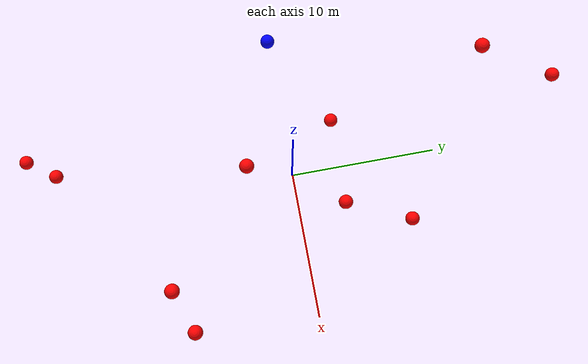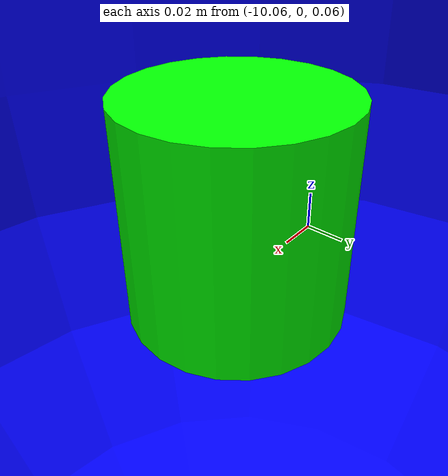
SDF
<?xml version="1.0" ?>
<sdf version="1.8">
    <world name="3d_world">
        <physics name="1ms" type="ode">
            <max_step_size>0.001</max_step_size>
            <real_time_factor>1.0</real_time_factor>
            <real_time_update_rate>1000.0</real_time_update_rate>
        </physics>
        <gravity>0 0 0</gravity>

        <plugin
            filename="gz-sim-physics-system"
            name="gz::sim::v8::systems::Physics">
        </plugin>
        <plugin
            filename="libignition-gazebo-user-commands-system.so"
            name="ignition::gazebo::systems::UserCommands">
        </plugin>
        <plugin
            filename="gz-sim-scene-broadcaster-system"
            name="gz::sim::systems::SceneBroadcaster">
        </plugin>
        <plugin
            filename="gz-sim-sensors-system"
            name="gz::sim::systems::Sensors">
            <render_engine>ogre2</render_engine>
        </plugin>

        <light type="directional" name="sun">
            <cast_shadows>true</cast_shadows>
            <pose>0 0 10 0 0 0</pose>
            <diffuse>0.8 0.8 0.8 1</diffuse>
            <specular>0.2 0.2 0.2 1</specular>
            <attenuation>
                <range>1000</range>
                <constant>0.9</constant>
                <linear>0.01</linear>
                <quadratic>0.001</quadratic>
            </attenuation>
            <direction>-0.5 0.1 -0.9</direction>
        </light>

        <!-- AGENTE -->
        <model name='agente' canonical_link='chassis'>
            <pose relative_to='world'>-10.0 0 0.0 0 0 0</pose>
            <link name='chassis'>
                <pose relative_to='__model__'>0.0 0 0.0 0 0 0</pose>
                <inertial>
                    <mass>1.14395</mass>
                    <inertia>
                        <ixx>0.095329</ixx>
                        <ixy>0</ixy>
                        <ixz>0</ixz>
                        <iyy>0.381317</iyy>
                        <iyz>0</iyz>
                        <izz>0.476646</izz>
                    </inertia>
                </inertial>
                <visual name='visual'>
                    <geometry>
                        <sphere>
                            <radius>0.5</radius>
                        </sphere>
                    </geometry>
                    <material>
                        <ambient>0.0 0.0 1.0 1</ambient>
                        <diffuse>0.0 0.0 1.0 1</diffuse>
                        <specular>0.0 0.0 1.0 1</specular>
                    </material>
                </visual>
                <collision name='collision'>
                    <geometry>
                        <sphere>
                            <radius>0.5</radius>
                        </sphere>
                    </geometry>
                </collision>
                <enable_gravity>false</enable_gravity>
            </link>

            <link name='lidar_link'>
                <pose relative_to='chassis'>0.0 0 0.1 0 0 0</pose>
                <inertial>
                    <mass>0.1</mass>
                    <inertia>
                        <ixx>0.000166667</ixx>
                        <iyy>0.000166667</iyy>
                        <izz>0.000166667</izz>
                    </inertia>
                </inertial>
                <collision name='collision'>
                    <geometry>
                        <cylinder>
                            <radius>0.05</radius>
                            <length>0.1</length>
                        </cylinder>
                    </geometry>
                </collision>
                <visual name='visual'>
                    <geometry>
                        <cylinder>
                            <radius>0.05</radius>
                            <length>0.1</length>
                        </cylinder>
                    </geometry>
                    <material>
                        <ambient>0.0 1.0 0.0 1</ambient>
                        <diffuse>0.0 1.0 0.0 1</diffuse>
                        <specular>0.0 1.0 0.0 1</specular>
                    </material>
                </visual>
                <sensor name="lidar" type="gpu_lidar">
                    <topic>scan</topic>
                    <update_rate>10</update_rate>
                    <lidar>
                        <scan>
                            <horizontal>
                                <samples>5000</samples>
                                <resolution>1</resolution>
                                <min_angle>-3.14159</min_angle>
                                <max_angle>3.14159</max_angle>
                            </horizontal>
                        </scan>
                        <range>
                            <min>0.1</min>
                            <max>10.0</max>
                            <resolution>0.01</resolution>
                        </range>
                    </lidar>
                    <visualize>true</visualize>
                    <always_on>true</always_on>
                    <update_rate>10</update_rate>
                    <pose_frame>lidar</pose_frame>
                </sensor>
                <enable_gravity>false</enable_gravity>
            </link>

            <joint name="lidar_joint" type="fixed">
                <parent>chassis</parent>
                <child>lidar_link</child>
            </joint>

            <plugin
                filename="ignition-gazebo-joint-state-publisher-system"
                name="ignition::gazebo::systems::JointStatePublisher">
            </plugin>
            <plugin
                filename="ignition-gazebo-odometry-publisher-system"
                name="ignition::gazebo::systems::OdometryPublisher">
                <dimensions>3</dimensions>
            </plugin>
            <plugin
                filename="ignition-gazebo-velocity-control-system"
                name="ignition::gazebo::systems::VelocityControl">
                <initial_linear>0.0 0 0</initial_linear>
                <initial_angular>0 0 0.0</initial_angular>
            </plugin>
            <plugin
                filename="libignition-gazebo-pose-publisher-system.so"
                name="ignition::gazebo::systems::PosePublisher">
                <topic>/agente/pose</topic>
                <frame_id>agente</frame_id>
                <update_rate>30</update_rate>
            </plugin>
        </model>

        <!-- OBSTACLE 1 -->
        <model name='obstacle_1' canonical_link='obstacle'>
            <static>false</static>
            <pose relative_to='world'>2.51 3.31 -0.12 0 0 0</pose>
            <link name='obstacle'>
                <pose relative_to='__model__'>0.0 0 0.0 0 0 0</pose>
                <visual name='visual'>
                    <geometry>
                        <sphere>
                            <radius>0.50</radius>
                        </sphere>
                    </geometry>
                    <material>
                        <ambient>1.0 0.0 0.0 1</ambient>
                        <diffuse>1.0 0.0 0.0 1</diffuse>
                        <specular>1.0 0.0 0.0 1</specular>
                    </material>
                </visual>
                <collision name='collision'>
                    <geometry>
                        <sphere>
                            <radius>0.50</radius>
                        </sphere>
                    </geometry>
                </collision>
                <enable_gravity>false</enable_gravity>
            </link>

            <plugin
                filename="ignition-gazebo-velocity-control-system"
                name="ignition::gazebo::systems::VelocityControl">
                <initial_linear>0.45 -0.54 0.02</initial_linear>
                <initial_angular>0 0 0</initial_angular>
            </plugin>

            <plugin
                filename="ignition-gazebo-odometry-publisher-system"
                name="ignition::gazebo::systems::OdometryPublisher">
                <dimensions>3</dimensions>
            </plugin>
        </model>

        <!-- OBSTACLE 2 -->
        <model name='obstacle_2' canonical_link='obstacle'>
            <static>false</static>
            <pose relative_to='world'>-4.34 3.73 -3.48 0 0 0</pose>
            <link name='obstacle'>
                <pose relative_to='__model__'>0.0 0 0.0 0 0 0</pose>
                <visual name='visual'>
                    <geometry>
                        <sphere>
                            <radius>0.50</radius>
                        </sphere>
                    </geometry>
                    <material>
                        <ambient>1.0 0.0 0.0 1</ambient>
                        <diffuse>1.0 0.0 0.0 1</diffuse>
                        <specular>1.0 0.0 0.0 1</specular>
                    </material>
                </visual>
                <collision name='collision'>
                    <geometry>
                        <sphere>
                            <radius>0.50</radius>
                        </sphere>
                    </geometry>
                </collision>
                <enable_gravity>false</enable_gravity>
            </link>

            <plugin
                filename="ignition-gazebo-velocity-control-system"
                name="ignition::gazebo::systems::VelocityControl">
                <initial_linear>1.41 -0.72 0.67</initial_linear>
                <initial_angular>0 0 0</initial_angular>
            </plugin>

            <plugin
                filename="ignition-gazebo-odometry-publisher-system"
                name="ignition::gazebo::systems::OdometryPublisher">
                <dimensions>3</dimensions>
            </plugin>
        </model>

        <!-- OBSTACLE 3 -->
        <model name='obstacle_3' canonical_link='obstacle'>
            <static>false</static>
            <pose relative_to='world'>6.79 -9.13 3.37 0 0 0</pose>
            <link name='obstacle'>
                <pose relative_to='__model__'>0.0 0 0.0 0 0 0</pose>
                <visual name='visual'>
                    <geometry>
                        <sphere>
                            <radius>0.50</radius>
                        </sphere>
                    </geometry>
                    <material>
                        <ambient>1.0 0.0 0.0 1</ambient>
                        <diffuse>1.0 0.0 0.0 1</diffuse>
                        <specular>1.0 0.0 0.0 1</specular>
                    </material>
                </visual>
                <collision name='collision'>
                    <geometry>
                        <sphere>
                            <radius>0.50</radius>
                        </sphere>
                    </geometry>
                </collision>
                <enable_gravity>false</enable_gravity>
            </link>

            <plugin
                filename="ignition-gazebo-velocity-control-system"
                name="ignition::gazebo::systems::VelocityControl">
                <initial_linear>-0.02 1.37 -0.51</initial_linear>
                <initial_angular>0 0 0</initial_angular>
            </plugin>

            <plugin
                filename="ignition-gazebo-odometry-publisher-system"
                name="ignition::gazebo::systems::OdometryPublisher">
                <dimensions>3</dimensions>
            </plugin>
        </model>

        <!-- OBSTACLE 4 -->
        <model name='obstacle_4' canonical_link='obstacle'>
            <static>false</static>
            <pose relative_to='world'>-4.84 -18.74 -2.17 0 0 0</pose>
            <link name='obstacle'>
                <pose relative_to='__model__'>0.0 0 0.0 0 0 0</pose>
                <visual name='visual'>
                    <geometry>
                        <sphere>
                            <radius>0.50</radius>
                        </sphere>
                    </geometry>
                    <material>
                        <ambient>1.0 0.0 0.0 1</ambient>
                        <diffuse>1.0 0.0 0.0 1</diffuse>
                        <specular>1.0 0.0 0.0 1</specular>
                    </material>
                </visual>
                <collision name='collision'>
                    <geometry>
                        <sphere>
                            <radius>0.50</radius>
                        </sphere>
                    </geometry>
                </collision>
                <enable_gravity>false</enable_gravity>
            </link>

            <plugin
                filename="ignition-gazebo-velocity-control-system"
                name="ignition::gazebo::systems::VelocityControl">
                <initial_linear>0.31 1.96 0.23</initial_linear>
                <initial_angular>0 0 0</initial_angular>
            </plugin>

            <plugin
                filename="ignition-gazebo-odometry-publisher-system"
                name="ignition::gazebo::systems::OdometryPublisher">
                <dimensions>3</dimensions>
            </plugin>
        </model>

        <!-- OBSTACLE 5 -->
        <model name='obstacle_5' canonical_link='obstacle'>
            <static>false</static>
            <pose relative_to='world'>9.58 -8.19 2.19 0 0 0</pose>
            <link name='obstacle'>
                <pose relative_to='__model__'>0.0 0 0.0 0 0 0</pose>
                <visual name='visual'>
                    <geometry>
                        <sphere>
                            <radius>0.50</radius>
                        </sphere>
                    </geometry>
                    <material>
                        <ambient>1.0 0.0 0.0 1</ambient>
                        <diffuse>1.0 0.0 0.0 1</diffuse>
                        <specular>1.0 0.0 0.0 1</specular>
                    </material>
                </visual>
                <collision name='collision'>
                    <geometry>
                        <sphere>
                            <radius>0.50</radius>
                        </sphere>
                    </geometry>
                </collision>
                <enable_gravity>false</enable_gravity>
            </link>

            <plugin
                filename="ignition-gazebo-velocity-control-system"
                name="ignition::gazebo::systems::VelocityControl">
                <initial_linear>-1.53 1.24 -0.33</initial_linear>
                <initial_angular>0 0 0</initial_angular>
            </plugin>

            <plugin
                filename="ignition-gazebo-odometry-publisher-system"
                name="ignition::gazebo::systems::OdometryPublisher">
                <dimensions>3</dimensions>
            </plugin>
        </model>

        <!-- OBSTACLE 6 -->
        <model name='obstacle_6' canonical_link='obstacle'>
            <static>false</static>
            <pose relative_to='world'>-5.40 13.76 4.67 0 0 0</pose>
            <link name='obstacle'>
                <pose relative_to='__model__'>0.0 0 0.0 0 0 0</pose>
                <visual name='visual'>
                    <geometry>
                        <sphere>
                            <radius>0.50</radius>
                        </sphere>
                    </geometry>
                    <material>
                        <ambient>1.0 0.0 0.0 1</ambient>
                        <diffuse>1.0 0.0 0.0 1</diffuse>
                        <specular>1.0 0.0 0.0 1</specular>
                    </material>
                </visual>
                <collision name='collision'>
                    <geometry>
                        <sphere>
                            <radius>0.50</radius>
                        </sphere>
                    </geometry>
                </collision>
                <enable_gravity>false</enable_gravity>
            </link>

            <plugin
                filename="ignition-gazebo-velocity-control-system"
                name="ignition::gazebo::systems::VelocityControl">
                <initial_linear>0.43 -1.85 -0.63</initial_linear>
                <initial_angular>0 0 0</initial_angular>
            </plugin>

            <plugin
                filename="ignition-gazebo-odometry-publisher-system"
                name="ignition::gazebo::systems::OdometryPublisher">
                <dimensions>3</dimensions>
            </plugin>
        </model>

        <!-- OBSTACLE 7 -->
        <model name='obstacle_7' canonical_link='obstacle'>
            <static>false</static>
            <pose relative_to='world'>4.36 7.79 -1.11 0 0 0</pose>
            <link name='obstacle'>
                <pose relative_to='__model__'>0.0 0 0.0 0 0 0</pose>
                <visual name='visual'>
                    <geometry>
                        <sphere>
                            <radius>0.50</radius>
                        </sphere>
                    </geometry>
                    <material>
                        <ambient>1.0 0.0 0.0 1</ambient>
                        <diffuse>1.0 0.0 0.0 1</diffuse>
                        <specular>1.0 0.0 0.0 1</specular>
                    </material>
                </visual>
                <collision name='collision'>
                    <geometry>
                        <sphere>
                            <radius>0.50</radius>
                        </sphere>
                    </geometry>
                </collision>
                <enable_gravity>false</enable_gravity>
            </link>

            <plugin
                filename="ignition-gazebo-velocity-control-system"
                name="ignition::gazebo::systems::VelocityControl">
                <initial_linear>-1.42 -1.40 0.20</initial_linear>
                <initial_angular>0 0 0</initial_angular>
            </plugin>

            <plugin
                filename="ignition-gazebo-odometry-publisher-system"
                name="ignition::gazebo::systems::OdometryPublisher">
                <dimensions>3</dimensions>
            </plugin>
        </model>

        <!-- OBSTACLE 8 -->
        <model name='obstacle_8' canonical_link='obstacle'>
            <static>false</static>
            <pose relative_to='world'>-0.54 -3.02 2.94 0 0 0</pose>
            <link name='obstacle'>
                <pose relative_to='__model__'>0.0 0 0.0 0 0 0</pose>
                <visual name='visual'>
                    <geometry>
                        <sphere>
                            <radius>0.50</radius>
                        </sphere>
                    </geometry>
                    <material>
                        <ambient>1.0 0.0 0.0 1</ambient>
                        <diffuse>1.0 0.0 0.0 1</diffuse>
                        <specular>1.0 0.0 0.0 1</specular>
                    </material>
                </visual>
                <collision name='collision'>
                    <geometry>
                        <sphere>
                            <radius>0.50</radius>
                        </sphere>
                    </geometry>
                </collision>
                <enable_gravity>false</enable_gravity>
            </link>

            <plugin
                filename="ignition-gazebo-velocity-control-system"
                name="ignition::gazebo::systems::VelocityControl">
                <initial_linear>-0.87 1.08 -1.05</initial_linear>
                <initial_angular>0 0 0</initial_angular>
            </plugin>

            <plugin
                filename="ignition-gazebo-odometry-publisher-system"
                name="ignition::gazebo::systems::OdometryPublisher">
                <dimensions>3</dimensions>
            </plugin>
        </model>

        <!-- OBSTACLE 9 -->
        <model name='obstacle_9' canonical_link='obstacle'>
            <static>false</static>
            <pose relative_to='world'>-3.93 19.65 -0.17 0 0 0</pose>
            <link name='obstacle'>
                <pose relative_to='__model__'>0.0 0 0.0 0 0 0</pose>
                <visual name='visual'>
                    <geometry>
                        <sphere>
                            <radius>0.50</radius>
                        </sphere>
                    </geometry>
                    <material>
                        <ambient>1.0 0.0 0.0 1</ambient>
                        <diffuse>1.0 0.0 0.0 1</diffuse>
                        <specular>1.0 0.0 0.0 1</specular>
                    </material>
                </visual>
                <collision name='collision'>
                    <geometry>
                        <sphere>
                            <radius>0.50</radius>
                        </sphere>
                    </geometry>
                </collision>
                <enable_gravity>false</enable_gravity>
            </link>

            <plugin
                filename="ignition-gazebo-velocity-control-system"
                name="ignition::gazebo::systems::VelocityControl">
                <initial_linear>0.54 -1.93 0.02</initial_linear>
                <initial_angular>0 0 0</initial_angular>
            </plugin>

            <plugin
                filename="ignition-gazebo-odometry-publisher-system"
                name="ignition::gazebo::systems::OdometryPublisher">
                <dimensions>3</dimensions>
            </plugin>
        </model>

        <!-- OBSTACLE 10 -->
        <model name='obstacle_10' canonical_link='obstacle'>
            <static>false</static>
            <pose relative_to='world'>-3.40 -16.74 -2.13 0 0 0</pose>
            <link name='obstacle'>
                <pose relative_to='__model__'>0.0 0 0.0 0 0 0</pose>
                <visual name='visual'>
                    <geometry>
                        <sphere>
                            <radius>0.50</radius>
                        </sphere>
                    </geometry>
                    <material>
                        <ambient>1.0 0.0 0.0 1</ambient>
                        <diffuse>1.0 0.0 0.0 1</diffuse>
                        <specular>1.0 0.0 0.0 1</specular>
                    </material>
                </visual>
                <collision name='collision'>
                    <geometry>
                        <sphere>
                            <radius>0.50</radius>
                        </sphere>
                    </geometry>
                </collision>
                <enable_gravity>false</enable_gravity>
            </link>

            <plugin
                filename="ignition-gazebo-velocity-control-system"
                name="ignition::gazebo::systems::VelocityControl">
                <initial_linear>-0.07 1.98 0.25</initial_linear>
                <initial_angular>0 0 0</initial_angular>
            </plugin>

            <plugin
                filename="ignition-gazebo-odometry-publisher-system"
                name="ignition::gazebo::systems::OdometryPublisher">
                <dimensions>3</dimensions>
            </plugin>
        </model>

    </world>
</sdf>
